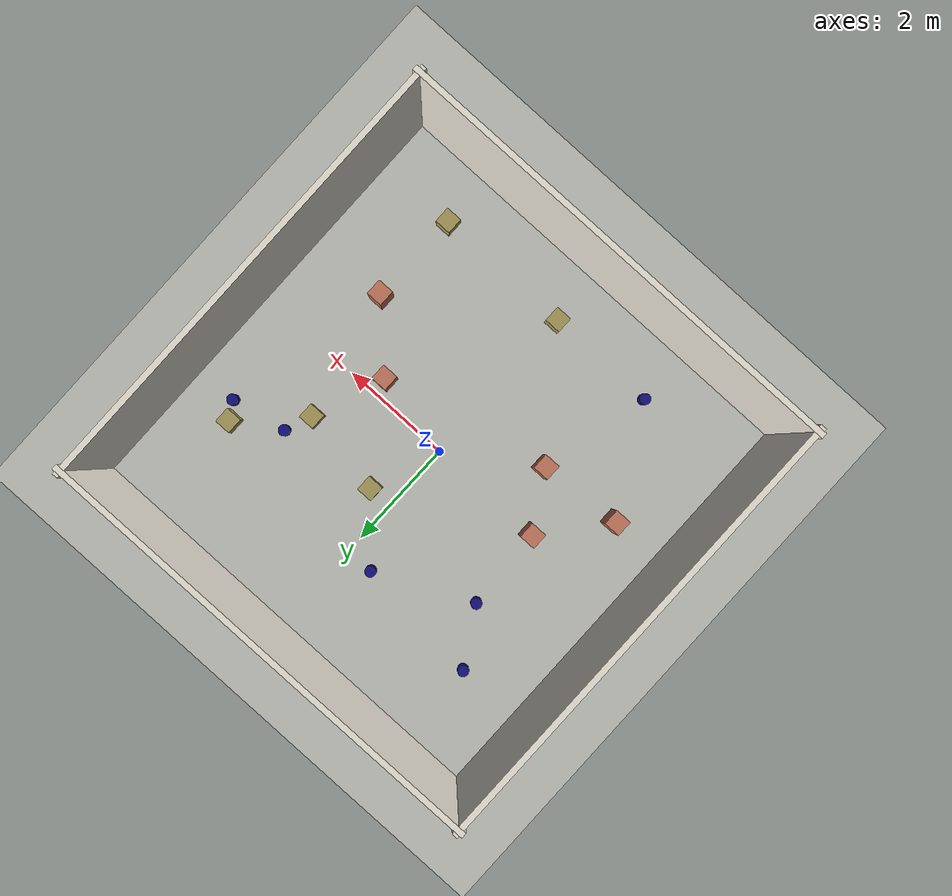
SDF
<?xml version="1.0"?>
<sdf version="1.8">
  <world name="room_world">
    <physics name="1ms" type="ignored">
      <max_step_size>0.001</max_step_size>
      <real_time_factor>1.0</real_time_factor>
    </physics>

    <plugin filename="gz-sim-physics-system" name="gz::sim::systems::Physics" />
    <plugin filename="gz-sim-user-commands-system" name="gz::sim::systems::UserCommands" />
    <plugin filename="gz-sim-scene-broadcaster-system" name="gz::sim::systems::SceneBroadcaster" />
    <plugin filename="gz-sim-sensors-system" name="gz::sim::systems::Sensors">
      <render_engine>ogre2</render_engine>
    </plugin>

    <light type="directional" name="sun">
      <cast_shadows>true</cast_shadows>
      <pose>0 0 10 0 0 0</pose>
      <diffuse>0.8 0.8 0.8 1</diffuse>
      <specular>0.2 0.2 0.2 1</specular>
      <direction>-0.5 0.1 -0.9</direction>
    </light>

    <model name="ground_plane">
      <static>true</static>
      <link name="link">
        <collision name="collision">
          <geometry>
            <plane>
              <normal>0 0 1</normal>
            </plane>
          </geometry>
          <surface>
            <friction>
              <ode>
                <mu>1.0</mu>
                <mu2>1.0</mu2>
              </ode>
            </friction>
          </surface>
        </collision>
        <visual name="visual">
          <geometry>
            <plane>
              <normal>0 0 1</normal>
              <size>8 8</size>
            </plane>
          </geometry>
          <material>
            <ambient>0.75 0.75 0.72 1</ambient>
            <diffuse>0.75 0.75 0.72 1</diffuse>
            <specular>0.2 0.2 0.2 1</specular>
          </material>
        </visual>
      </link>
    </model>

    <model name="room">
      <static>true</static>
      <link name="wall_back">
        <pose>0 4 1.25 0 0 0</pose>
        <visual name="visual">
          <geometry>
            <box>
              <size>8.2 0.1 2.5</size>
            </box>
          </geometry>
          <material>
            <ambient>0.92 0.90 0.85 1</ambient>
            <diffuse>0.92 0.90 0.85 1</diffuse>
            <specular>0.1 0.1 0.1 1</specular>
          </material>
        </visual>
        <collision name="collision">
          <geometry>
            <box>
              <size>8.2 0.1 2.5</size>
            </box>
          </geometry>
        </collision>
      </link>
      <link name="wall_front">
        <pose>0 -4 1.25 0 0 0</pose>
        <visual name="visual">
          <geometry>
            <box>
              <size>8.2 0.1 2.5</size>
            </box>
          </geometry>
          <material>
            <ambient>0.92 0.90 0.85 1</ambient>
            <diffuse>0.92 0.90 0.85 1</diffuse>
            <specular>0.1 0.1 0.1 1</specular>
          </material>
        </visual>
        <collision name="collision">
          <geometry>
            <box>
              <size>8.2 0.1 2.5</size>
            </box>
          </geometry>
        </collision>
      </link>
      <link name="wall_left">
        <pose>-4 0 1.25 0 0 0</pose>
        <visual name="visual">
          <geometry>
            <box>
              <size>0.1 8.2 2.5</size>
            </box>
          </geometry>
          <material>
            <ambient>0.92 0.90 0.85 1</ambient>
            <diffuse>0.92 0.90 0.85 1</diffuse>
            <specular>0.1 0.1 0.1 1</specular>
          </material>
        </visual>
        <collision name="collision">
          <geometry>
            <box>
              <size>0.1 8.2 2.5</size>
            </box>
          </geometry>
        </collision>
      </link>
      <link name="wall_right">
        <pose>4 0 1.25 0 0 0</pose>
        <visual name="visual">
          <geometry>
            <box>
              <size>0.1 8.2 2.5</size>
            </box>
          </geometry>
          <material>
            <ambient>0.92 0.90 0.85 1</ambient>
            <diffuse>0.92 0.90 0.85 1</diffuse>
            <specular>0.1 0.1 0.1 1</specular>
          </material>
        </visual>
        <collision name="collision">
          <geometry>
            <box>
              <size>0.1 8.2 2.5</size>
            </box>
          </geometry>
        </collision>
      </link>

      <!-- Small boxes-->
      <link name="small_box1">
        <pose>2 1 0.15 0 0 0</pose>
        <visual name="visual">
          <geometry>
            <box>
              <size>0.3 0.3 0.3</size>
            </box>
          </geometry>
          <material>
            <ambient>0.651 0.6 0.345 1</ambient>
            <diffuse>0.651 0.6 0.345 1</diffuse>
            <specular>0.1 0.1 0.1 1</specular>
          </material>
        </visual>
        <collision name="collision">
          <geometry>
            <box>
              <size>0.3 0.3 0.3</size>
            </box>
          </geometry>
        </collision>
      </link>
      <link name="small_box2">
        <pose>3 2 0.15 0 0 0</pose>
        <visual name="visual">
          <geometry>
            <box>
              <size>0.3 0.3 0.3</size>
            </box>
          </geometry>
          <material>
            <ambient>0.651 0.6 0.345 1</ambient>
            <diffuse>0.651 0.6 0.345 1</diffuse>
            <specular>0.1 0.1 0.1 1</specular>
          </material>
        </visual>
        <collision name="collision">
          <geometry>
            <box>
              <size>0.3 0.3 0.3</size>
            </box>
          </geometry>
        </collision>
      </link>
      <link name="small_box3">
        <pose>0 -3 0.15 0 0 0</pose>
        <visual name="visual">
          <geometry>
            <box>
              <size>0.3 0.3 0.3</size>
            </box>
          </geometry>
          <material>
            <ambient>0.651 0.6 0.345 1</ambient>
            <diffuse>0.651 0.6 0.345 1</diffuse>
            <specular>0.1 0.1 0.1 1</specular>
          </material>
        </visual>
        <collision name="collision">
          <geometry>
            <box>
              <size>0.3 0.3 0.3</size>
            </box>
          </geometry>
        </collision>
      </link>
      <link name="small_box4">
        <pose>0.45 1.25 0.15 0 0 0</pose>
        <visual name="visual">
          <geometry>
            <box>
              <size>0.3 0.3 0.3</size>
            </box>
          </geometry>
          <material>
            <ambient>0.651 0.6 0.345 1</ambient>
            <diffuse>0.651 0.6 0.345 1</diffuse>
            <specular>0.1 0.1 0.1 1</specular>
          </material>
        </visual>
        <collision name="collision">
          <geometry>
            <box>
              <size>0.3 0.3 0.3</size>
            </box>
          </geometry>
        </collision>
      </link>
      <link name="small_box5">
        <pose>2.5 -3 0.15 0 0 0</pose>
        <visual name="visual">
          <geometry>
            <box>
              <size>0.3 0.3 0.3</size>
            </box>
          </geometry>
          <material>
            <ambient>0.651 0.6 0.345 1</ambient>
            <diffuse>0.651 0.6 0.345 1</diffuse>
            <specular>0.1 0.1 0.1 1</specular>
          </material>
        </visual>
        <collision name="collision">
          <geometry>
            <box>
              <size>0.3 0.3 0.3</size>
            </box>
          </geometry>
        </collision>
      </link>

      <!-- Tall boxes-->
      <link name="tall_box1">
        <pose>2.5 -1.3 0.3 0 0 0</pose>
        <visual name="visual">
          <geometry>
            <box>
              <size>0.3 0.3 0.6</size>
            </box>
          </geometry>
          <material>
            <ambient>0.769 0.467 0.361 1</ambient>
            <diffuse>0.769 0.467 0.361 1</diffuse>
            <specular>0.1 0.1 0.1 1</specular>
          </material>
        </visual>
        <collision name="collision">
          <geometry>
            <box>
              <size>0.3 0.3 0.3</size>
            </box>
          </geometry>
        </collision>
      </link>
      <link name="tall_box2">
        <pose>1.5 -0.3 0.3 0 0 0</pose>
        <visual name="visual">
          <geometry>
            <box>
              <size>0.3 0.3 0.6</size>
            </box>
          </geometry>
          <material>
            <ambient>0.769 0.467 0.361 1</ambient>
            <diffuse>0.769 0.467 0.361 1</diffuse>
            <specular>0.1 0.1 0.1 1</specular>
          </material>
        </visual>
        <collision name="collision">
          <geometry>
            <box>
              <size>0.3 0.3 0.3</size>
            </box>
          </geometry>
        </collision>
      </link>
      <link name="tall_box3">
        <pose>-1.5 -1 0.3 0 0 0</pose>
        <visual name="visual">
          <geometry>
            <box>
              <size>0.3 0.3 0.6</size>
            </box>
          </geometry>
          <material>
            <ambient>0.769 0.467 0.361 1</ambient>
            <diffuse>0.769 0.467 0.361 1</diffuse>
            <specular>0.1 0.1 0.1 1</specular>
          </material>
        </visual>
        <collision name="collision">
          <geometry>
            <box>
              <size>0.3 0.3 0.3</size>
            </box>
          </geometry>
        </collision>
      </link>
      <link name="tall_box4">
        <pose>-2.1 0 0.3 0 0 0</pose>
        <visual name="visual">
          <geometry>
            <box>
              <size>0.3 0.3 0.6</size>
            </box>
          </geometry>
          <material>
            <ambient>0.769 0.467 0.361 1</ambient>
            <diffuse>0.769 0.467 0.361 1</diffuse>
            <specular>0.1 0.1 0.1 1</specular>
          </material>
        </visual>
        <collision name="collision">
          <geometry>
            <box>
              <size>0.3 0.3 0.3</size>
            </box>
          </geometry>
        </collision>
      </link>
      <link name="tall_box5">
        <pose>-3 -1.1 0.3 0 0 0</pose>
        <visual name="visual">
          <geometry>
            <box>
              <size>0.3 0.3 0.6</size>
            </box>
          </geometry>
          <material>
            <ambient>0.769 0.467 0.361 1</ambient>
            <diffuse>0.769 0.467 0.361 1</diffuse>
            <specular>0.1 0.1 0.1 1</specular>
          </material>
        </visual>
        <collision name="collision">
          <geometry>
            <box>
              <size>0.3 0.3 0.3</size>
            </box>
          </geometry>
        </collision>
      </link>

      <!-- Barrels-->
      <link name="barrel1">
        <pose>-2.2 1.5 0.1 0 0 0</pose>
        <visual name="visual">
          <geometry>
            <cylinder>
              <radius>0.1</radius>
              <length>0.2</length>
            </cylinder>
          </geometry>
          <material>
            <ambient>0.082 0.063 0.49 1</ambient>
            <diffuse>0.082 0.063 0.49 1</diffuse>
            <specular>0.1 0.1 0.1 1</specular>
          </material>
        </visual>
        <collision name="collision">
          <geometry>
            <cylinder>
              <radius>0.1</radius>
              <length>0.2</length>
            </cylinder>
          </geometry>
        </collision>
      </link>
      <link name="barrel2">
        <pose>3.2 1.7 0.1 0 0 0</pose>
        <visual name="visual">
          <geometry>
            <cylinder>
              <radius>0.1</radius>
              <length>0.2</length>
            </cylinder>
          </geometry>
          <material>
            <ambient>0.082 0.063 0.49 1</ambient>
            <diffuse>0.082 0.063 0.49 1</diffuse>
            <specular>0.1 0.1 0.1 1</specular>
          </material>
        </visual>
        <collision name="collision">
          <geometry>
            <cylinder>
              <radius>0.1</radius>
              <length>0.2</length>
            </cylinder>
          </geometry>
        </collision>
      </link>
      <link name="barrel3">
        <pose>-2.8 2.5 0.1 0 0 0</pose>
        <visual name="visual">
          <geometry>
            <cylinder>
              <radius>0.1</radius>
              <length>0.2</length>
            </cylinder>
          </geometry>
          <material>
            <ambient>0.082 0.063 0.49 1</ambient>
            <diffuse>0.082 0.063 0.49 1</diffuse>
            <specular>0.1 0.1 0.1 1</specular>
          </material>
        </visual>
        <collision name="collision">
          <geometry>
            <cylinder>
              <radius>0.1</radius>
              <length>0.2</length>
            </cylinder>
          </geometry>
        </collision>
      </link>
      <link name="barrel4">
        <pose>-0.5 2.3 0.1 0 0 0</pose>
        <visual name="visual">
          <geometry>
            <cylinder>
              <radius>0.1</radius>
              <length>0.2</length>
            </cylinder>
          </geometry>
          <material>
            <ambient>0.082 0.063 0.49 1</ambient>
            <diffuse>0.082 0.063 0.49 1</diffuse>
            <specular>0.1 0.1 0.1 1</specular>
          </material>
        </visual>
        <collision name="collision">
          <geometry>
            <cylinder>
              <radius>0.1</radius>
              <length>0.2</length>
            </cylinder>
          </geometry>
        </collision>
      </link>
      <link name="barrel5">
        <pose>2.2 1.5 0.1 0 0 0</pose>
        <visual name="visual">
          <geometry>
            <cylinder>
              <radius>0.1</radius>
              <length>0.2</length>
            </cylinder>
          </geometry>
          <material>
            <ambient>0.082 0.063 0.49 1</ambient>
            <diffuse>0.082 0.063 0.49 1</diffuse>
            <specular>0.1 0.1 0.1 1</specular>
          </material>
        </visual>
        <collision name="collision">
          <geometry>
            <cylinder>
              <radius>0.1</radius>
              <length>0.2</length>
            </cylinder>
          </geometry>
        </collision>
      </link>
      <link name="barrel6">
        <pose>-2 -3 0.1 0 0 0</pose>
        <visual name="visual">
          <geometry>
            <cylinder>
              <radius>0.1</radius>
              <length>0.2</length>
            </cylinder>
          </geometry>
          <material>
            <ambient>0.082 0.063 0.49 1</ambient>
            <diffuse>0.082 0.063 0.49 1</diffuse>
            <specular>0.1 0.1 0.1 1</specular>
          </material>
        </visual>
        <collision name="collision">
          <geometry>
            <cylinder>
              <radius>0.1</radius>
              <length>0.2</length>
            </cylinder>
          </geometry>
        </collision>
      </link>
    </model>
  </world>
</sdf>
